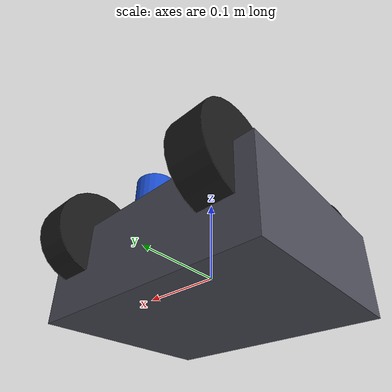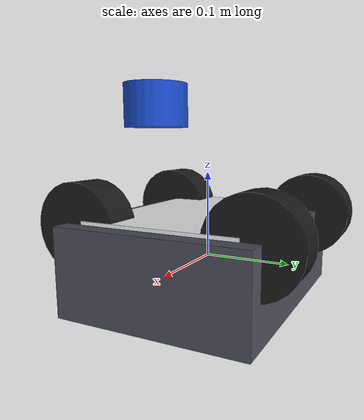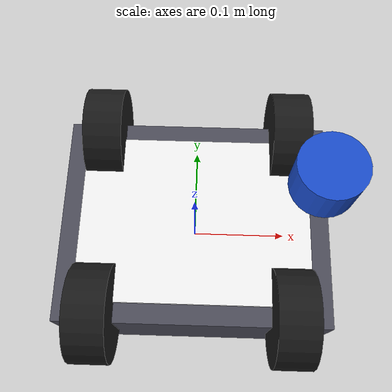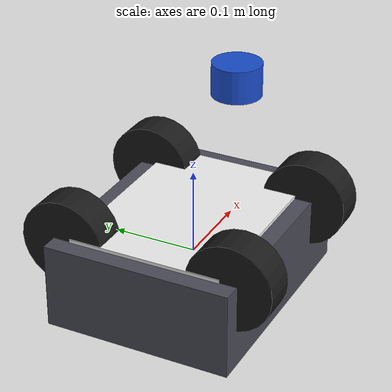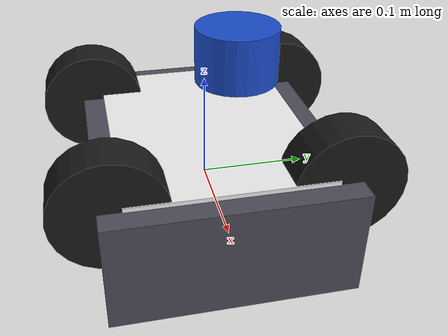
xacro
<?xml version="1.0"?>
<robot name="robomaster_ep" xmlns:xacro="http://www.ros.org/wiki/xacro">

  <!-- ========== 材质定义 ========== -->
  <material name="chassis_grey">
    <color rgba="0.3 0.3 0.35 1.0"/>
  </material>
  <material name="wheel_black">
    <color rgba="0.1 0.1 0.1 1.0"/>
  </material>
  <material name="laser_blue">
    <color rgba="0.1 0.3 0.8 1.0"/>
  </material>
  <material name="white">
    <color rgba="0.95 0.95 0.95 1.0"/>
  </material>

  <!-- ========== 宏: 麦克纳姆轮 ========== -->
  <xacro:macro name="mecanum_wheel" params="name pos_x pos_y pos_z">
    <link name="${name}">
      <visual>
        <origin xyz="0 0 0" rpy="0 ${pi/2} 0"/>
        <geometry>
          <cylinder radius="${wheel_radius}" length="${wheel_width}"/>
        </geometry>
        <material name="wheel_black"/>
      </visual>
    </link>

    <joint name="${name}_joint" type="continuous">
      <parent link="base_link"/>
      <child link="${name}"/>
      <origin xyz="${pos_x} ${pos_y} ${pos_z}" rpy="0 0 0"/>
      <axis xyz="0 1 0"/>
    </joint>
  </xacro:macro>

  <!-- ========== 底盘参数 ========== -->
  <xacro:property name="chassis_length" value="0.28"/>
  <xacro:property name="chassis_width" value="0.22"/>
  <xacro:property name="chassis_height" value="0.10"/>
  <xacro:property name="chassis_clearance" value="0.045"/>

  <xacro:property name="wheel_radius" value="0.05"/>
  <xacro:property name="wheel_width" value="0.04"/>
  <xacro:property name="wheel_base" value="0.198"/>
  <xacro:property name="wheel_track" value="0.20"/>

  <!-- 激光雷达安装位置 (底盘顶部最前方居中) -->
  <xacro:property name="laser_x" value="0.11"/>
  <xacro:property name="laser_z" value="0.10"/>

  <!-- ========== base_link ========== -->
  <link name="base_link">
    <visual>
      <geometry>
        <box size="${chassis_length} ${chassis_width} ${chassis_height}"/>
      </geometry>
      <material name="chassis_grey"/>
    </visual>
    <visual>
      <!-- 顶部白色装饰板 -->
      <origin xyz="0 0 ${chassis_height/2 + 0.002}" rpy="0 0 0"/>
      <geometry>
        <box size="${chassis_length - 0.04} ${chassis_width - 0.04} 0.004"/>
      </geometry>
      <material name="white"/>
    </visual>
  </link>

  <!-- ========== imu_link (HI12 外置 IMU) ========== -->
  <link name="imu_link"/>

  <joint name="imu_joint" type="fixed">
    <parent link="base_link"/>
    <child link="imu_link"/>
    <!-- HI12 安装位置: 长度中间 (x=0)，右侧偏 6cm (y=-0.06)，底盘顶部 (z=0.10)
         模块 X 轴朝前、Y 轴朝左、Z 轴朝上，与 base_link 对齐，rpy=0 -->
    <origin xyz="0 -0.06 0.10" rpy="0 0 0"/>
  </joint>

  <!-- ========== laser_link (RPLIDAR A2 安装位置) ========== -->
  <link name="laser_link">
    <visual>
      <origin xyz="0 0 0.02" rpy="0 0 0"/>
      <geometry>
        <cylinder radius="0.03" length="0.04"/>
      </geometry>
      <material name="laser_blue"/>
      </visual>
  </link>

  <joint name="laser_joint" type="fixed">
    <parent link="base_link"/>
    <child link="laser_link"/>
    <origin xyz="${laser_x} 0 ${chassis_height/2 + laser_z}" rpy="0 0 0"/>
  </joint>

  <!-- ========== D435i (Intel RealSense D435i) ========== -->
  <!-- 安装位置: 底盘顶部前方，激光雷达后方 -->
  <xacro:property name="d435i_x" value="0.05"/>
  <xacro:property name="d435i_y" value="0.0"/>
  <xacro:property name="d435i_z" value="0.12"/>

  <!-- camera_link: realsense2_camera 发布的 TF 子树根 (camera_link→camera_depth_frame→...)
       驱动只发 camera_link 往下的子变换，不发 camera_link 的父变换，
       所以这里由 URDF 把它挂到 base_link 上，二者接力、不冲突。 -->
  <link name="camera_link"/>

  <joint name="camera_link_joint" type="fixed">
    <parent link="base_link"/>
    <child link="camera_link"/>
    <origin xyz="${d435i_x} ${d435i_y} ${d435i_z}" rpy="0 0 0"/>
  </joint>

  <!-- d435i_link: 语义别名, 挂在 camera_link 下, 给 depth_to_laserscan 的 output_frame_id 用 -->
  <link name="d435i_link"/>

  <joint name="d435i_link_joint" type="fixed">
    <parent link="camera_link"/>
    <child link="d435i_link"/>
    <origin xyz="0 0 0" rpy="0 0 0"/>
  </joint>

  <!-- ========== 四个麦克纳姆轮 ========== -->
  <xacro:property name="pos_z" value="${-chassis_height/2 + wheel_radius + chassis_clearance}"/>

  <xacro:mecanum_wheel name="wheel_fl" pos_x="${wheel_base/2}" pos_y="${wheel_track/2}" pos_z="${pos_z}"/>
  <xacro:mecanum_wheel name="wheel_fr" pos_x="${wheel_base/2}" pos_y="${-wheel_track/2}" pos_z="${pos_z}"/>
  <xacro:mecanum_wheel name="wheel_rl" pos_x="${-wheel_base/2}" pos_y="${wheel_track/2}" pos_z="${pos_z}"/>
  <xacro:mecanum_wheel name="wheel_rr" pos_x="${-wheel_base/2}" pos_y="${-wheel_track/2}" pos_z="${pos_z}"/>

</robot>
